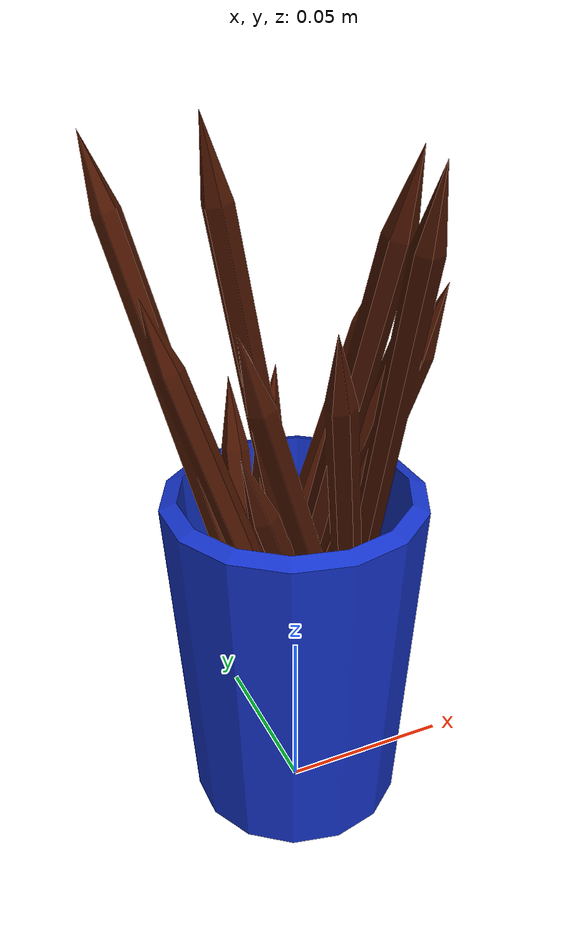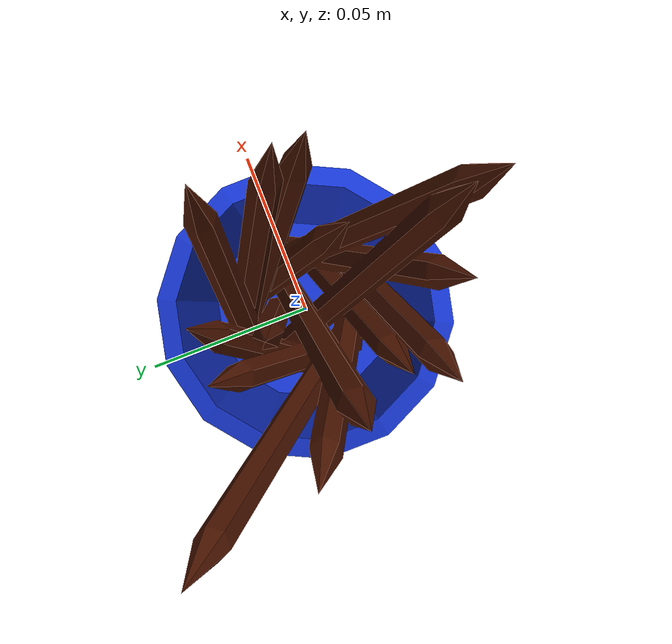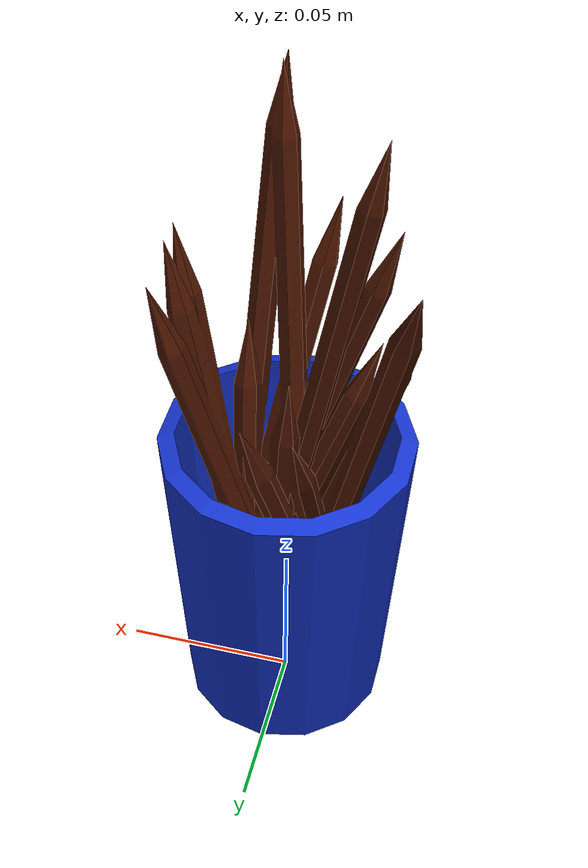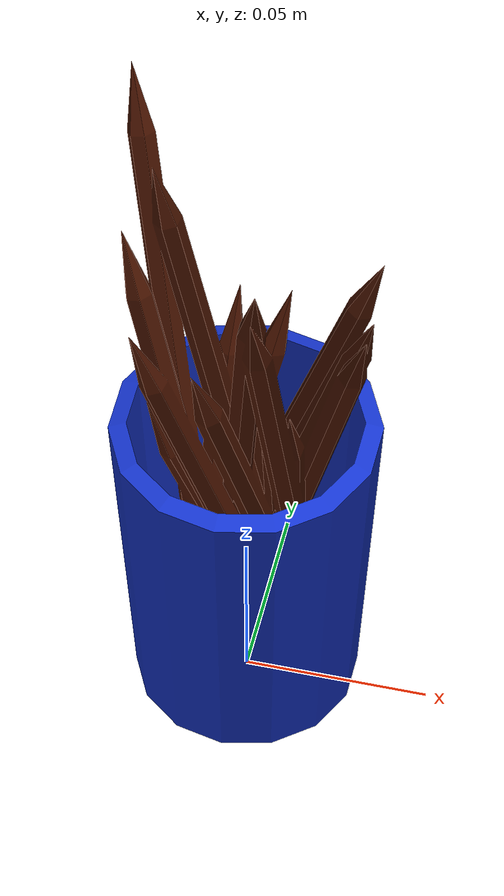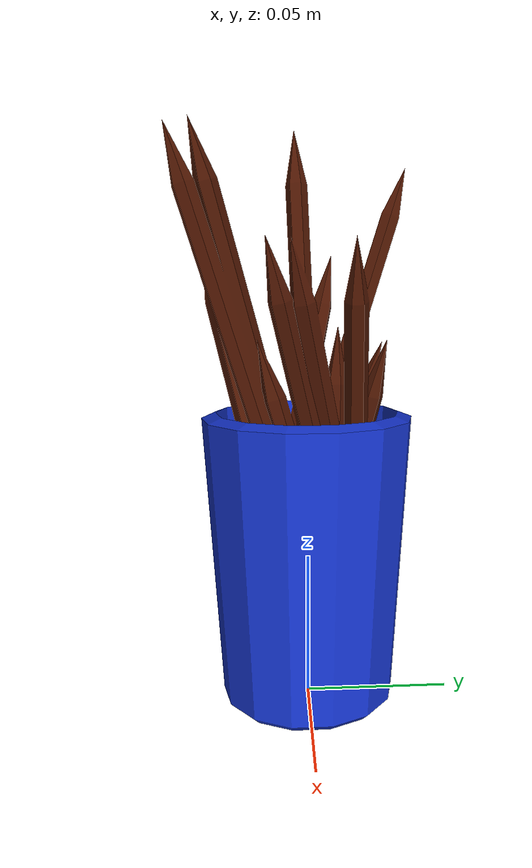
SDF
<?xml version='1.0'?>
<sdf version="1.4">
	<model name="pencil_jar">
		<static>1</static>
		<link name="link">
			<visual name="mesh">
				<geometry>
					<mesh>
						<uri>model://meshes/pencil_jar.dae</uri>
					</mesh>
				</geometry>
			</visual>
			<collision name="collider">
				<pose>0 0 0.1 0 0 0</pose>
				<geometry>
					<cylinder>
						<radius>0.035</radius>
						<length>0.2</length>
					</cylinder>
				</geometry>
			</collision>
		</link>
	</model>
</sdf>
